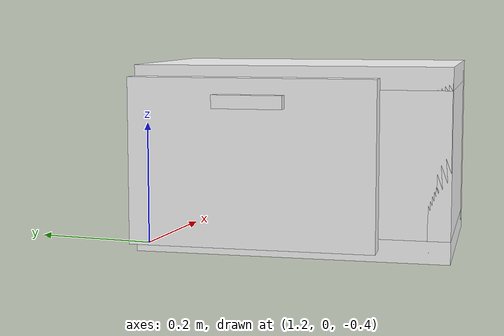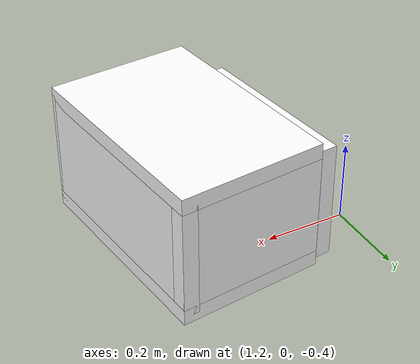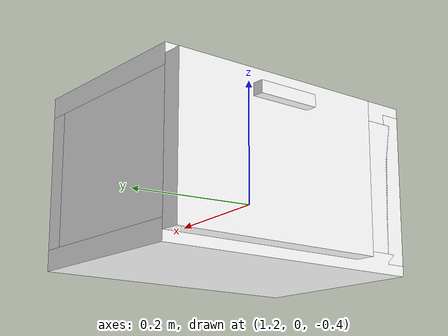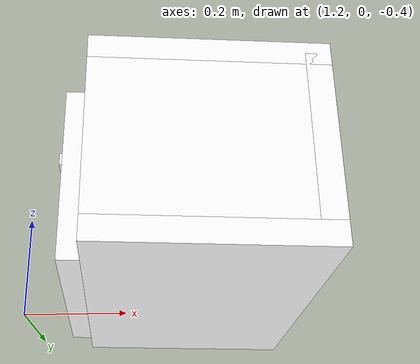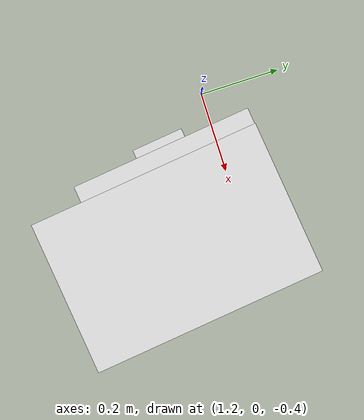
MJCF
<mujoco model="cabinet">
    <compiler angle="radian" eulerseq='zxy' />
    <option gravity = "0 0 0" />
    <option>
        <flag contact = "disable"/>
    </option>
    <statistic	extent="1.0" center="0.0 0.0 0.0"/>
    <visual>
        <map fogstart="3" fogend="5" force="0.1" znear=" 0.100000 " zfar=" 12.000000 "/>
    </visual>
    <size njmax="500" nconmax="100" />
    <actuator>
        <velocity joint="bottom_left_hinge" name="viva_revolution" kv='10'></velocity>
    </actuator>
    <asset>
        <texture builtin="flat" name="tabletex" height="32" width="32" rgb1="1 1 1" type="cube"></texture>
        <texture builtin="flat" name="objtex" height="32" width="32" rgb1="1 1 1" type="cube"></texture>
        <texture builtin="flat" name="handletex" height="32" width="32" rgb1="1 1 1" type="cube"></texture>
        <texture builtin="flat" name="wallpaper" height="32" width="32" rgb1="1 1 1" type="cube"></texture>
        <texture builtin="flat" name="kp" height="32" width="32" rgb1="1 1 1" type="cube"></texture>
        <material name="geomTable" shininess="0.03" specular="0.75" texture="tabletex"></material>
        <material name="geomObj" shininess="0.03" specular="0.75" texture="objtex"></material>
        <material name="geomHandle" shininess="0.03" specular="0.75" texture="handletex"></material>
        <material name="bg" shininess="0.03" specular="0.75" texture="wallpaper"></material>
        <material name="geomKeypad" shininess="0.03" specular="0.75" texture="kp"></material>
    </asset>
    <worldbody>
        <body name="cabinet_bottom" pos= " 1.538028 -0.173180 -0.424349 "  quat= " -0.057135 0.000000 0.000000 0.998366" >
            <inertial pos="0 0 0" mass="1" diaginertia="1 1 1" />
            <geom size= " 0.184086 0.279601 0.019812 "  type="box" material="geomObj" name="b"/>
            <body name="cabinet_left" pos= " 0.000000 -0.259788 0.147804 " >
                <inertial pos="0 0 0" mass="1" diaginertia="1 1 1" />
                <geom size= " 0.184086 0.019812 0.147804 "  type="box" material="geomObj" name="c" />
            </body>
            <body name="cabinet_right" pos= " 0.000000 0.259788 0.147804 " >
                <inertial pos="0 0 0" mass="1" diaginertia="1 1 1" />
                <geom size= " 0.184086 0.019812 0.147804 "  type="box" material="geomObj" name="d" />
            </body>
            <body name="cabinet_top" pos= " 0.000000 0.000000 0.295609 " >
                <inertial pos="0 0 0" mass="1" diaginertia="1 1 1" />
                <geom size= " 0.184086 0.279601 0.019812 "  type="box" material="geomObj" name="e"/>
            </body>
            <body name="cabinet_back" pos= " -0.164274 0.000000 0.147804 "  >
                <inertial pos="0 0 0" mass="1" diaginertia="1 1 1" />
                <geom size= " 0.019812 0.279601 0.147804 "  type="box" material="geomObj" name="f" />
            </body>
            <body name="cabinet_keypad" pos= " 0.019812 0.217142 0.147804 " >
                <inertial pos="0 0 0" mass="1" diaginertia="1 1 1" />
                <geom size= " 0.164274 0.061459 0.127992 "  type="box" material="geomKeypad" name="keypizzlemynizzle" />
            </body>
            <body name="cabinet_left_hinge" pos= " 0.184086 -0.061459 0.000000 " >
                <inertial pos= " 0.020000 0.000000 0.147804 "  mass="1" diaginertia="1 1 1" />
                <joint name="bottom_left_hinge" type="hinge" pos="0 0 0" axis="0 1 0" limited="true" range= "0 2.3"  />
                <geom size= " 0.019812 0.218142 0.147804 "  pos= " 0.020000 0.000000 0.147804 "  type="box" material="geomObj" name="g"/>
                <body name="handle_link" pos= " 0.046022 0.000000 0.255984 " >
                    <inertial pos="0 0 0" mass="1" diaginertia="1 1 1" />
                    <geom size= " 0.015431 0.061459 0.011667 "  type="box" material="geomHandle" name="h"/>
                </body>
            </body>
        </body>
        <body name="external_camera_body_0" pos="0.0 0 0.00">
            <camera euler="-1.57 1.57 0.0" fovy=" 54.280851 " name="external_camera_0" pos="0.0 0 0"></camera>
            <inertial pos= " 0.00 0.0 0.000000 " mass="1" diaginertia="1 1 1" />
            <joint name="cam_j" pos="0.0 0 0" axis = "1 0 0" type="free" />
        </body>
    </worldbody>
</mujoco>
